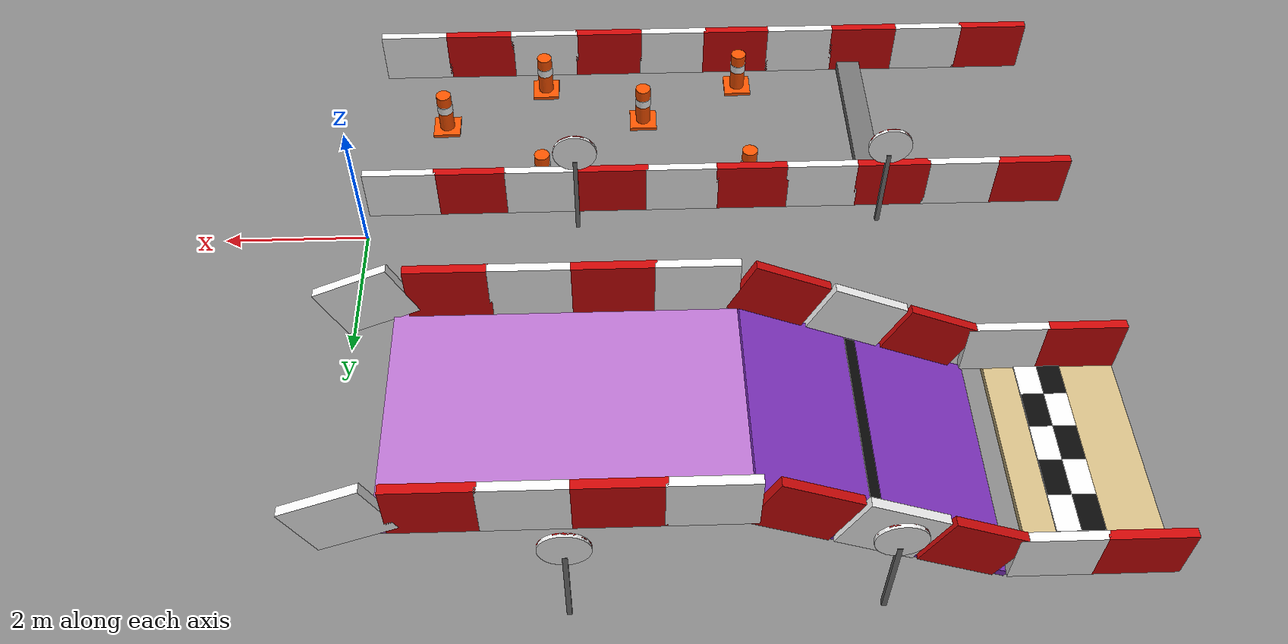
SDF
<sdf version="1.6">
 <world name="evrenos_teknofest_2026">
  <include><uri>model://sun</uri></include>
  <model name="main_course">
   <static>true</static>
   <link name="top_finish_base_0">
    <pose>-9.1500 4.0000 -0.0500 0.000000 0.000000 0.000000</pose>
    <collision name="top_finish_base_0_collision">
     <geometry><box><size>1.7000 3.0000 0.1000</size></box></geometry>
    </collision>
    <visual name="top_finish_base_0_visual">
     <geometry><box><size>1.7000 3.0000 0.1000</size></box></geometry>
     <material><ambient>0.82 0.73 0.52 1</ambient><diffuse>0.82 0.73 0.52 1</diffuse></material>
    </visual>
   </link>
   <link name="shooting_platform">
    <pose>-2.9000 4.0000 1.3172 0.000000 0.000000 0.000000</pose>
    <collision name="shooting_platform_collision">
     <geometry><box><size>4.2000 3.0000 0.1000</size></box></geometry>
    </collision>
    <visual name="shooting_platform_visual">
     <geometry><box><size>4.2000 3.0000 0.1000</size></box></geometry>
     <material><ambient>0.72 0.45 0.8 1</ambient><diffuse>0.72 0.45 0.8 1</diffuse></material>
    </visual>
   </link>
   <link name="steep_down">
    <pose>-6.5000 4.0000 0.6336 0.000000 -0.427606 0.000000</pose>
    <collision name="steep_down_collision">
     <geometry><box><size>3.2968 3.0000 0.1000</size></box></geometry>
    </collision>
    <visual name="steep_down_visual">
     <geometry><box><size>3.2968 3.0000 0.1000</size></box></geometry>
     <material><ambient>0.5 0.2 0.75 1</ambient><diffuse>0.5 0.2 0.75 1</diffuse></material>
    </visual>
   </link>
   <link name="stop_strip_down">
    <pose>-6.4500 4.0000 0.7036 0.000000 -0.427606 0.000000</pose>
    <visual name="stop_strip_down_visual">
     <geometry><box><size>0.1500 2.8500 0.0300</size></box></geometry>
     <material><ambient>0.04 0.04 0.04 1</ambient><diffuse>0.04 0.04 0.04 1</diffuse></material>
    </visual>
   </link>
   <link name="finish_0_0">
    <pose>-9.1500 2.7500 0.0110 0.000000 0.000000 0.000000</pose>
    <visual name="finish_0_0_visual">
     <geometry><box><size>0.3000 0.5000 0.0220</size></box></geometry>
     <material><ambient>0.04 0.04 0.04 1</ambient><diffuse>0.04 0.04 0.04 1</diffuse></material>
    </visual>
   </link>
   <link name="finish_1_0">
    <pose>-8.8500 2.7500 0.0110 0.000000 0.000000 0.000000</pose>
    <visual name="finish_1_0_visual">
     <geometry><box><size>0.3000 0.5000 0.0220</size></box></geometry>
     <material><ambient>0.95 0.95 0.95 1</ambient><diffuse>0.95 0.95 0.95 1</diffuse></material>
    </visual>
   </link>
   <link name="finish_0_1">
    <pose>-9.1500 3.2500 0.0110 0.000000 0.000000 0.000000</pose>
    <visual name="finish_0_1_visual">
     <geometry><box><size>0.3000 0.5000 0.0220</size></box></geometry>
     <material><ambient>0.95 0.95 0.95 1</ambient><diffuse>0.95 0.95 0.95 1</diffuse></material>
    </visual>
   </link>
   <link name="finish_1_1">
    <pose>-8.8500 3.2500 0.0110 0.000000 0.000000 0.000000</pose>
    <visual name="finish_1_1_visual">
     <geometry><box><size>0.3000 0.5000 0.0220</size></box></geometry>
     <material><ambient>0.04 0.04 0.04 1</ambient><diffuse>0.04 0.04 0.04 1</diffuse></material>
    </visual>
   </link>
   <link name="finish_0_2">
    <pose>-9.1500 3.7500 0.0110 0.000000 0.000000 0.000000</pose>
    <visual name="finish_0_2_visual">
     <geometry><box><size>0.3000 0.5000 0.0220</size></box></geometry>
     <material><ambient>0.04 0.04 0.04 1</ambient><diffuse>0.04 0.04 0.04 1</diffuse></material>
    </visual>
   </link>
   <link name="finish_1_2">
    <pose>-8.8500 3.7500 0.0110 0.000000 0.000000 0.000000</pose>
    <visual name="finish_1_2_visual">
     <geometry><box><size>0.3000 0.5000 0.0220</size></box></geometry>
     <material><ambient>0.95 0.95 0.95 1</ambient><diffuse>0.95 0.95 0.95 1</diffuse></material>
    </visual>
   </link>
   <link name="finish_0_3">
    <pose>-9.1500 4.2500 0.0110 0.000000 0.000000 0.000000</pose>
    <visual name="finish_0_3_visual">
     <geometry><box><size>0.3000 0.5000 0.0220</size></box></geometry>
     <material><ambient>0.95 0.95 0.95 1</ambient><diffuse>0.95 0.95 0.95 1</diffuse></material>
    </visual>
   </link>
   <link name="finish_1_3">
    <pose>-8.8500 4.2500 0.0110 0.000000 0.000000 0.000000</pose>
    <visual name="finish_1_3_visual">
     <geometry><box><size>0.3000 0.5000 0.0220</size></box></geometry>
     <material><ambient>0.04 0.04 0.04 1</ambient><diffuse>0.04 0.04 0.04 1</diffuse></material>
    </visual>
   </link>
   <link name="finish_0_4">
    <pose>-9.1500 4.7500 0.0110 0.000000 0.000000 0.000000</pose>
    <visual name="finish_0_4_visual">
     <geometry><box><size>0.3000 0.5000 0.0220</size></box></geometry>
     <material><ambient>0.04 0.04 0.04 1</ambient><diffuse>0.04 0.04 0.04 1</diffuse></material>
    </visual>
   </link>
   <link name="finish_1_4">
    <pose>-8.8500 4.7500 0.0110 0.000000 0.000000 0.000000</pose>
    <visual name="finish_1_4_visual">
     <geometry><box><size>0.3000 0.5000 0.0220</size></box></geometry>
     <material><ambient>0.95 0.95 0.95 1</ambient><diffuse>0.95 0.95 0.95 1</diffuse></material>
    </visual>
   </link>
   <link name="finish_0_5">
    <pose>-9.1500 5.2500 0.0110 0.000000 0.000000 0.000000</pose>
    <visual name="finish_0_5_visual">
     <geometry><box><size>0.3000 0.5000 0.0220</size></box></geometry>
     <material><ambient>0.95 0.95 0.95 1</ambient><diffuse>0.95 0.95 0.95 1</diffuse></material>
    </visual>
   </link>
   <link name="finish_1_5">
    <pose>-8.8500 5.2500 0.0110 0.000000 0.000000 0.000000</pose>
    <visual name="finish_1_5_visual">
     <geometry><box><size>0.3000 0.5000 0.0220</size></box></geometry>
     <material><ambient>0.04 0.04 0.04 1</ambient><diffuse>0.04 0.04 0.04 1</diffuse></material>
    </visual>
   </link>
   <link name="vertical_obstacle">
    <pose>-7.3000 -2.0000 0.0750 0.000000 0.000000 0.000000</pose>
    <collision name="vertical_obstacle_collision">
     <geometry><box><size>0.3500 3.0000 0.1500</size></box></geometry>
    </collision>
    <visual name="vertical_obstacle_visual">
     <geometry><box><size>0.3500 3.0000 0.1500</size></box></geometry>
     <material><ambient>0.45 0.45 0.45 1</ambient><diffuse>0.45 0.45 0.45 1</diffuse></material>
    </visual>
   </link>
   <link name="cone_base_0">
    <pose>-5.5000 -3.0625 0.0250 0.000000 0.000000 0.000000</pose>
    <collision name="cone_base_0_collision">
     <geometry><box><size>0.4000 0.4000 0.0500</size></box></geometry>
    </collision>
    <visual name="cone_base_0_visual">
     <geometry><box><size>0.4000 0.4000 0.0500</size></box></geometry>
     <material><ambient>1.0 0.32 0.0 1</ambient><diffuse>1.0 0.32 0.0 1</diffuse></material>
    </visual>
   </link>
   <link name="cone_orange_0">
    <pose>-5.5000 -3.0625 0.3600 0.000000 0.000000 0.000000</pose>
    <collision name="cone_orange_0_collision">
     <geometry><cylinder><radius>0.1100</radius><length>0.6200</length></cylinder></geometry>
    </collision>
    <visual name="cone_orange_0_visual">
     <geometry><cylinder><radius>0.1100</radius><length>0.6200</length></cylinder></geometry>
     <material><ambient>1.0 0.32 0.0 1</ambient><diffuse>1.0 0.32 0.0 1</diffuse></material>
    </visual>
   </link>
   <link name="cone_white_0">
    <pose>-5.5000 -3.0625 0.4300 0.000000 0.000000 0.000000</pose>
    <collision name="cone_white_0_collision">
     <geometry><cylinder><radius>0.1150</radius><length>0.1300</length></cylinder></geometry>
    </collision>
    <visual name="cone_white_0_visual">
     <geometry><cylinder><radius>0.1150</radius><length>0.1300</length></cylinder></geometry>
     <material><ambient>0.95 0.95 0.95 1</ambient><diffuse>0.95 0.95 0.95 1</diffuse></material>
    </visual>
   </link>
   <link name="cone_base_1">
    <pose>-5.5000 -0.9375 0.0250 0.000000 0.000000 0.000000</pose>
    <collision name="cone_base_1_collision">
     <geometry><box><size>0.4000 0.4000 0.0500</size></box></geometry>
    </collision>
    <visual name="cone_base_1_visual">
     <geometry><box><size>0.4000 0.4000 0.0500</size></box></geometry>
     <material><ambient>1.0 0.32 0.0 1</ambient><diffuse>1.0 0.32 0.0 1</diffuse></material>
    </visual>
   </link>
   <link name="cone_orange_1">
    <pose>-5.5000 -0.9375 0.3600 0.000000 0.000000 0.000000</pose>
    <collision name="cone_orange_1_collision">
     <geometry><cylinder><radius>0.1100</radius><length>0.6200</length></cylinder></geometry>
    </collision>
    <visual name="cone_orange_1_visual">
     <geometry><cylinder><radius>0.1100</radius><length>0.6200</length></cylinder></geometry>
     <material><ambient>1.0 0.32 0.0 1</ambient><diffuse>1.0 0.32 0.0 1</diffuse></material>
    </visual>
   </link>
   <link name="cone_white_1">
    <pose>-5.5000 -0.9375 0.4300 0.000000 0.000000 0.000000</pose>
    <collision name="cone_white_1_collision">
     <geometry><cylinder><radius>0.1150</radius><length>0.1300</length></cylinder></geometry>
    </collision>
    <visual name="cone_white_1_visual">
     <geometry><cylinder><radius>0.1150</radius><length>0.1300</length></cylinder></geometry>
     <material><ambient>0.95 0.95 0.95 1</ambient><diffuse>0.95 0.95 0.95 1</diffuse></material>
    </visual>
   </link>
   <link name="cone_base_2">
    <pose>-4.0000 -2.3125 0.0250 0.000000 0.000000 0.000000</pose>
    <collision name="cone_base_2_collision">
     <geometry><box><size>0.4000 0.4000 0.0500</size></box></geometry>
    </collision>
    <visual name="cone_base_2_visual">
     <geometry><box><size>0.4000 0.4000 0.0500</size></box></geometry>
     <material><ambient>1.0 0.32 0.0 1</ambient><diffuse>1.0 0.32 0.0 1</diffuse></material>
    </visual>
   </link>
   <link name="cone_orange_2">
    <pose>-4.0000 -2.3125 0.3600 0.000000 0.000000 0.000000</pose>
    <collision name="cone_orange_2_collision">
     <geometry><cylinder><radius>0.1100</radius><length>0.6200</length></cylinder></geometry>
    </collision>
    <visual name="cone_orange_2_visual">
     <geometry><cylinder><radius>0.1100</radius><length>0.6200</length></cylinder></geometry>
     <material><ambient>1.0 0.32 0.0 1</ambient><diffuse>1.0 0.32 0.0 1</diffuse></material>
    </visual>
   </link>
   <link name="cone_white_2">
    <pose>-4.0000 -2.3125 0.4300 0.000000 0.000000 0.000000</pose>
    <collision name="cone_white_2_collision">
     <geometry><cylinder><radius>0.1150</radius><length>0.1300</length></cylinder></geometry>
    </collision>
    <visual name="cone_white_2_visual">
     <geometry><cylinder><radius>0.1150</radius><length>0.1300</length></cylinder></geometry>
     <material><ambient>0.95 0.95 0.95 1</ambient><diffuse>0.95 0.95 0.95 1</diffuse></material>
    </visual>
   </link>
   <link name="cone_base_3">
    <pose>-2.5000 -3.0625 0.0250 0.000000 0.000000 0.000000</pose>
    <collision name="cone_base_3_collision">
     <geometry><box><size>0.4000 0.4000 0.0500</size></box></geometry>
    </collision>
    <visual name="cone_base_3_visual">
     <geometry><box><size>0.4000 0.4000 0.0500</size></box></geometry>
     <material><ambient>1.0 0.32 0.0 1</ambient><diffuse>1.0 0.32 0.0 1</diffuse></material>
    </visual>
   </link>
   <link name="cone_orange_3">
    <pose>-2.5000 -3.0625 0.3600 0.000000 0.000000 0.000000</pose>
    <collision name="cone_orange_3_collision">
     <geometry><cylinder><radius>0.1100</radius><length>0.6200</length></cylinder></geometry>
    </collision>
    <visual name="cone_orange_3_visual">
     <geometry><cylinder><radius>0.1100</radius><length>0.6200</length></cylinder></geometry>
     <material><ambient>1.0 0.32 0.0 1</ambient><diffuse>1.0 0.32 0.0 1</diffuse></material>
    </visual>
   </link>
   <link name="cone_white_3">
    <pose>-2.5000 -3.0625 0.4300 0.000000 0.000000 0.000000</pose>
    <collision name="cone_white_3_collision">
     <geometry><cylinder><radius>0.1150</radius><length>0.1300</length></cylinder></geometry>
    </collision>
    <visual name="cone_white_3_visual">
     <geometry><cylinder><radius>0.1150</radius><length>0.1300</length></cylinder></geometry>
     <material><ambient>0.95 0.95 0.95 1</ambient><diffuse>0.95 0.95 0.95 1</diffuse></material>
    </visual>
   </link>
   <link name="cone_base_4">
    <pose>-2.5000 -0.9375 0.0250 0.000000 0.000000 0.000000</pose>
    <collision name="cone_base_4_collision">
     <geometry><box><size>0.4000 0.4000 0.0500</size></box></geometry>
    </collision>
    <visual name="cone_base_4_visual">
     <geometry><box><size>0.4000 0.4000 0.0500</size></box></geometry>
     <material><ambient>1.0 0.32 0.0 1</ambient><diffuse>1.0 0.32 0.0 1</diffuse></material>
    </visual>
   </link>
   <link name="cone_orange_4">
    <pose>-2.5000 -0.9375 0.3600 0.000000 0.000000 0.000000</pose>
    <collision name="cone_orange_4_collision">
     <geometry><cylinder><radius>0.1100</radius><length>0.6200</length></cylinder></geometry>
    </collision>
    <visual name="cone_orange_4_visual">
     <geometry><cylinder><radius>0.1100</radius><length>0.6200</length></cylinder></geometry>
     <material><ambient>1.0 0.32 0.0 1</ambient><diffuse>1.0 0.32 0.0 1</diffuse></material>
    </visual>
   </link>
   <link name="cone_white_4">
    <pose>-2.5000 -0.9375 0.4300 0.000000 0.000000 0.000000</pose>
    <collision name="cone_white_4_collision">
     <geometry><cylinder><radius>0.1150</radius><length>0.1300</length></cylinder></geometry>
    </collision>
    <visual name="cone_white_4_visual">
     <geometry><cylinder><radius>0.1150</radius><length>0.1300</length></cylinder></geometry>
     <material><ambient>0.95 0.95 0.95 1</ambient><diffuse>0.95 0.95 0.95 1</diffuse></material>
    </visual>
   </link>
   <link name="cone_base_5">
    <pose>-1.0000 -2.2500 0.0250 0.000000 0.000000 0.000000</pose>
    <collision name="cone_base_5_collision">
     <geometry><box><size>0.4000 0.4000 0.0500</size></box></geometry>
    </collision>
    <visual name="cone_base_5_visual">
     <geometry><box><size>0.4000 0.4000 0.0500</size></box></geometry>
     <material><ambient>1.0 0.32 0.0 1</ambient><diffuse>1.0 0.32 0.0 1</diffuse></material>
    </visual>
   </link>
   <link name="cone_orange_5">
    <pose>-1.0000 -2.2500 0.3600 0.000000 0.000000 0.000000</pose>
    <collision name="cone_orange_5_collision">
     <geometry><cylinder><radius>0.1100</radius><length>0.6200</length></cylinder></geometry>
    </collision>
    <visual name="cone_orange_5_visual">
     <geometry><cylinder><radius>0.1100</radius><length>0.6200</length></cylinder></geometry>
     <material><ambient>1.0 0.32 0.0 1</ambient><diffuse>1.0 0.32 0.0 1</diffuse></material>
    </visual>
   </link>
   <link name="cone_white_5">
    <pose>-1.0000 -2.2500 0.4300 0.000000 0.000000 0.000000</pose>
    <collision name="cone_white_5_collision">
     <geometry><cylinder><radius>0.1150</radius><length>0.1300</length></cylinder></geometry>
    </collision>
    <visual name="cone_white_5_visual">
     <geometry><cylinder><radius>0.1150</radius><length>0.1300</length></cylinder></geometry>
     <material><ambient>0.95 0.95 0.95 1</ambient><diffuse>0.95 0.95 0.95 1</diffuse></material>
    </visual>
   </link>
   <link name="middle_bar_-1_0">
    <pose>-9.5000 -3.5000 0.4000 0.000000 0.000000 0.000000</pose>
    <collision name="middle_bar_-1_0_collision">
     <geometry><box><size>1.0300 0.1200 0.8000</size></box></geometry>
    </collision>
    <visual name="middle_bar_-1_0_visual">
     <geometry><box><size>1.0300 0.1200 0.8000</size></box></geometry>
     <material><ambient>0.8 0.03 0.03 1</ambient><diffuse>0.8 0.03 0.03 1</diffuse></material>
    </visual>
   </link>
   <link name="middle_bar_-1_1">
    <pose>-8.5000 -3.5000 0.4000 0.000000 0.000000 0.000000</pose>
    <collision name="middle_bar_-1_1_collision">
     <geometry><box><size>1.0300 0.1200 0.8000</size></box></geometry>
    </collision>
    <visual name="middle_bar_-1_1_visual">
     <geometry><box><size>1.0300 0.1200 0.8000</size></box></geometry>
     <material><ambient>0.95 0.95 0.95 1</ambient><diffuse>0.95 0.95 0.95 1</diffuse></material>
    </visual>
   </link>
   <link name="middle_bar_-1_2">
    <pose>-7.5000 -3.5000 0.4000 0.000000 0.000000 0.000000</pose>
    <collision name="middle_bar_-1_2_collision">
     <geometry><box><size>1.0300 0.1200 0.8000</size></box></geometry>
    </collision>
    <visual name="middle_bar_-1_2_visual">
     <geometry><box><size>1.0300 0.1200 0.8000</size></box></geometry>
     <material><ambient>0.8 0.03 0.03 1</ambient><diffuse>0.8 0.03 0.03 1</diffuse></material>
    </visual>
   </link>
   <link name="middle_bar_-1_3">
    <pose>-6.5000 -3.5000 0.4000 0.000000 0.000000 0.000000</pose>
    <collision name="middle_bar_-1_3_collision">
     <geometry><box><size>1.0300 0.1200 0.8000</size></box></geometry>
    </collision>
    <visual name="middle_bar_-1_3_visual">
     <geometry><box><size>1.0300 0.1200 0.8000</size></box></geometry>
     <material><ambient>0.95 0.95 0.95 1</ambient><diffuse>0.95 0.95 0.95 1</diffuse></material>
    </visual>
   </link>
   <link name="middle_bar_-1_4">
    <pose>-5.5000 -3.5000 0.4000 0.000000 0.000000 0.000000</pose>
    <collision name="middle_bar_-1_4_collision">
     <geometry><box><size>1.0300 0.1200 0.8000</size></box></geometry>
    </collision>
    <visual name="middle_bar_-1_4_visual">
     <geometry><box><size>1.0300 0.1200 0.8000</size></box></geometry>
     <material><ambient>0.8 0.03 0.03 1</ambient><diffuse>0.8 0.03 0.03 1</diffuse></material>
    </visual>
   </link>
   <link name="middle_bar_-1_5">
    <pose>-4.5000 -3.5000 0.4000 0.000000 0.000000 0.000000</pose>
    <collision name="middle_bar_-1_5_collision">
     <geometry><box><size>1.0300 0.1200 0.8000</size></box></geometry>
    </collision>
    <visual name="middle_bar_-1_5_visual">
     <geometry><box><size>1.0300 0.1200 0.8000</size></box></geometry>
     <material><ambient>0.95 0.95 0.95 1</ambient><diffuse>0.95 0.95 0.95 1</diffuse></material>
    </visual>
   </link>
   <link name="middle_bar_-1_6">
    <pose>-3.5000 -3.5000 0.4000 0.000000 0.000000 0.000000</pose>
    <collision name="middle_bar_-1_6_collision">
     <geometry><box><size>1.0300 0.1200 0.8000</size></box></geometry>
    </collision>
    <visual name="middle_bar_-1_6_visual">
     <geometry><box><size>1.0300 0.1200 0.8000</size></box></geometry>
     <material><ambient>0.8 0.03 0.03 1</ambient><diffuse>0.8 0.03 0.03 1</diffuse></material>
    </visual>
   </link>
   <link name="middle_bar_-1_7">
    <pose>-2.5000 -3.5000 0.4000 0.000000 0.000000 0.000000</pose>
    <collision name="middle_bar_-1_7_collision">
     <geometry><box><size>1.0300 0.1200 0.8000</size></box></geometry>
    </collision>
    <visual name="middle_bar_-1_7_visual">
     <geometry><box><size>1.0300 0.1200 0.8000</size></box></geometry>
     <material><ambient>0.95 0.95 0.95 1</ambient><diffuse>0.95 0.95 0.95 1</diffuse></material>
    </visual>
   </link>
   <link name="middle_bar_-1_8">
    <pose>-1.5000 -3.5000 0.4000 0.000000 0.000000 0.000000</pose>
    <collision name="middle_bar_-1_8_collision">
     <geometry><box><size>1.0300 0.1200 0.8000</size></box></geometry>
    </collision>
    <visual name="middle_bar_-1_8_visual">
     <geometry><box><size>1.0300 0.1200 0.8000</size></box></geometry>
     <material><ambient>0.8 0.03 0.03 1</ambient><diffuse>0.8 0.03 0.03 1</diffuse></material>
    </visual>
   </link>
   <link name="middle_bar_-1_9">
    <pose>-0.5000 -3.5000 0.4000 0.000000 0.000000 0.000000</pose>
    <collision name="middle_bar_-1_9_collision">
     <geometry><box><size>1.0300 0.1200 0.8000</size></box></geometry>
    </collision>
    <visual name="middle_bar_-1_9_visual">
     <geometry><box><size>1.0300 0.1200 0.8000</size></box></geometry>
     <material><ambient>0.95 0.95 0.95 1</ambient><diffuse>0.95 0.95 0.95 1</diffuse></material>
    </visual>
   </link>
   <link name="middle_bar_1_0">
    <pose>-9.5000 -0.5000 0.4000 0.000000 0.000000 0.000000</pose>
    <collision name="middle_bar_1_0_collision">
     <geometry><box><size>1.0300 0.1200 0.8000</size></box></geometry>
    </collision>
    <visual name="middle_bar_1_0_visual">
     <geometry><box><size>1.0300 0.1200 0.8000</size></box></geometry>
     <material><ambient>0.8 0.03 0.03 1</ambient><diffuse>0.8 0.03 0.03 1</diffuse></material>
    </visual>
   </link>
   <link name="middle_bar_1_1">
    <pose>-8.5000 -0.5000 0.4000 0.000000 0.000000 0.000000</pose>
    <collision name="middle_bar_1_1_collision">
     <geometry><box><size>1.0300 0.1200 0.8000</size></box></geometry>
    </collision>
    <visual name="middle_bar_1_1_visual">
     <geometry><box><size>1.0300 0.1200 0.8000</size></box></geometry>
     <material><ambient>0.95 0.95 0.95 1</ambient><diffuse>0.95 0.95 0.95 1</diffuse></material>
    </visual>
   </link>
   <link name="middle_bar_1_2">
    <pose>-7.5000 -0.5000 0.4000 0.000000 0.000000 0.000000</pose>
    <collision name="middle_bar_1_2_collision">
     <geometry><box><size>1.0300 0.1200 0.8000</size></box></geometry>
    </collision>
    <visual name="middle_bar_1_2_visual">
     <geometry><box><size>1.0300 0.1200 0.8000</size></box></geometry>
     <material><ambient>0.8 0.03 0.03 1</ambient><diffuse>0.8 0.03 0.03 1</diffuse></material>
    </visual>
   </link>
   <link name="middle_bar_1_3">
    <pose>-6.5000 -0.5000 0.4000 0.000000 0.000000 0.000000</pose>
    <collision name="middle_bar_1_3_collision">
     <geometry><box><size>1.0300 0.1200 0.8000</size></box></geometry>
    </collision>
    <visual name="middle_bar_1_3_visual">
     <geometry><box><size>1.0300 0.1200 0.8000</size></box></geometry>
     <material><ambient>0.95 0.95 0.95 1</ambient><diffuse>0.95 0.95 0.95 1</diffuse></material>
    </visual>
   </link>
   <link name="middle_bar_1_4">
    <pose>-5.5000 -0.5000 0.4000 0.000000 0.000000 0.000000</pose>
    <collision name="middle_bar_1_4_collision">
     <geometry><box><size>1.0300 0.1200 0.8000</size></box></geometry>
    </collision>
    <visual name="middle_bar_1_4_visual">
     <geometry><box><size>1.0300 0.1200 0.8000</size></box></geometry>
     <material><ambient>0.8 0.03 0.03 1</ambient><diffuse>0.8 0.03 0.03 1</diffuse></material>
    </visual>
   </link>
   <link name="middle_bar_1_5">
    <pose>-4.5000 -0.5000 0.4000 0.000000 0.000000 0.000000</pose>
    <collision name="middle_bar_1_5_collision">
     <geometry><box><size>1.0300 0.1200 0.8000</size></box></geometry>
    </collision>
    <visual name="middle_bar_1_5_visual">
     <geometry><box><size>1.0300 0.1200 0.8000</size></box></geometry>
     <material><ambient>0.95 0.95 0.95 1</ambient><diffuse>0.95 0.95 0.95 1</diffuse></material>
    </visual>
   </link>
   <link name="middle_bar_1_6">
    <pose>-3.5000 -0.5000 0.4000 0.000000 0.000000 0.000000</pose>
    <collision name="middle_bar_1_6_collision">
     <geometry><box><size>1.0300 0.1200 0.8000</size></box></geometry>
    </collision>
    <visual name="middle_bar_1_6_visual">
     <geometry><box><size>1.0300 0.1200 0.8000</size></box></geometry>
     <material><ambient>0.8 0.03 0.03 1</ambient><diffuse>0.8 0.03 0.03 1</diffuse></material>
    </visual>
   </link>
   <link name="middle_bar_1_7">
    <pose>-2.5000 -0.5000 0.4000 0.000000 0.000000 0.000000</pose>
    <collision name="middle_bar_1_7_collision">
     <geometry><box><size>1.0300 0.1200 0.8000</size></box></geometry>
    </collision>
    <visual name="middle_bar_1_7_visual">
     <geometry><box><size>1.0300 0.1200 0.8000</size></box></geometry>
     <material><ambient>0.95 0.95 0.95 1</ambient><diffuse>0.95 0.95 0.95 1</diffuse></material>
    </visual>
   </link>
   <link name="middle_bar_1_8">
    <pose>-1.5000 -0.5000 0.4000 0.000000 0.000000 0.000000</pose>
    <collision name="middle_bar_1_8_collision">
     <geometry><box><size>1.0300 0.1200 0.8000</size></box></geometry>
    </collision>
    <visual name="middle_bar_1_8_visual">
     <geometry><box><size>1.0300 0.1200 0.8000</size></box></geometry>
     <material><ambient>0.8 0.03 0.03 1</ambient><diffuse>0.8 0.03 0.03 1</diffuse></material>
    </visual>
   </link>
   <link name="middle_bar_1_9">
    <pose>-0.5000 -0.5000 0.4000 0.000000 0.000000 0.000000</pose>
    <collision name="middle_bar_1_9_collision">
     <geometry><box><size>1.0300 0.1200 0.8000</size></box></geometry>
    </collision>
    <visual name="middle_bar_1_9_visual">
     <geometry><box><size>1.0300 0.1200 0.8000</size></box></geometry>
     <material><ambient>0.95 0.95 0.95 1</ambient><diffuse>0.95 0.95 0.95 1</diffuse></material>
    </visual>
   </link>
   <link name="top_bar_-1_0">
    <pose>-9.5000 2.5000 0.4000 0.000000 0.000000 0.000000</pose>
    <collision name="top_bar_-1_0_collision">
     <geometry><box><size>1.0300 0.1200 0.8000</size></box></geometry>
    </collision>
    <visual name="top_bar_-1_0_visual">
     <geometry><box><size>1.0300 0.1200 0.8000</size></box></geometry>
     <material><ambient>0.8 0.03 0.03 1</ambient><diffuse>0.8 0.03 0.03 1</diffuse></material>
    </visual>
   </link>
   <link name="top_bar_-1_1">
    <pose>-8.5000 2.5000 0.4000 0.000000 0.000000 0.000000</pose>
    <collision name="top_bar_-1_1_collision">
     <geometry><box><size>1.0300 0.1200 0.8000</size></box></geometry>
    </collision>
    <visual name="top_bar_-1_1_visual">
     <geometry><box><size>1.0300 0.1200 0.8000</size></box></geometry>
     <material><ambient>0.95 0.95 0.95 1</ambient><diffuse>0.95 0.95 0.95 1</diffuse></material>
    </visual>
   </link>
   <link name="top_bar_-1_2">
    <pose>-7.5000 2.5000 0.6279 0.000000 -0.427606 0.000000</pose>
    <collision name="top_bar_-1_2_collision">
     <geometry><box><size>1.0300 0.1200 0.8000</size></box></geometry>
    </collision>
    <visual name="top_bar_-1_2_visual">
     <geometry><box><size>1.0300 0.1200 0.8000</size></box></geometry>
     <material><ambient>0.8 0.03 0.03 1</ambient><diffuse>0.8 0.03 0.03 1</diffuse></material>
    </visual>
   </link>
   <link name="top_bar_-1_3">
    <pose>-6.5000 2.5000 1.0836 0.000000 -0.427606 0.000000</pose>
    <collision name="top_bar_-1_3_collision">
     <geometry><box><size>1.0300 0.1200 0.8000</size></box></geometry>
    </collision>
    <visual name="top_bar_-1_3_visual">
     <geometry><box><size>1.0300 0.1200 0.8000</size></box></geometry>
     <material><ambient>0.95 0.95 0.95 1</ambient><diffuse>0.95 0.95 0.95 1</diffuse></material>
    </visual>
   </link>
   <link name="top_bar_-1_4">
    <pose>-5.5000 2.5000 1.5393 0.000000 -0.427606 0.000000</pose>
    <collision name="top_bar_-1_4_collision">
     <geometry><box><size>1.0300 0.1200 0.8000</size></box></geometry>
    </collision>
    <visual name="top_bar_-1_4_visual">
     <geometry><box><size>1.0300 0.1200 0.8000</size></box></geometry>
     <material><ambient>0.8 0.03 0.03 1</ambient><diffuse>0.8 0.03 0.03 1</diffuse></material>
    </visual>
   </link>
   <link name="top_bar_-1_5">
    <pose>-4.5000 2.5000 1.7672 0.000000 0.000000 0.000000</pose>
    <collision name="top_bar_-1_5_collision">
     <geometry><box><size>1.0300 0.1200 0.8000</size></box></geometry>
    </collision>
    <visual name="top_bar_-1_5_visual">
     <geometry><box><size>1.0300 0.1200 0.8000</size></box></geometry>
     <material><ambient>0.95 0.95 0.95 1</ambient><diffuse>0.95 0.95 0.95 1</diffuse></material>
    </visual>
   </link>
   <link name="top_bar_-1_6">
    <pose>-3.5000 2.5000 1.7672 0.000000 0.000000 0.000000</pose>
    <collision name="top_bar_-1_6_collision">
     <geometry><box><size>1.0300 0.1200 0.8000</size></box></geometry>
    </collision>
    <visual name="top_bar_-1_6_visual">
     <geometry><box><size>1.0300 0.1200 0.8000</size></box></geometry>
     <material><ambient>0.8 0.03 0.03 1</ambient><diffuse>0.8 0.03 0.03 1</diffuse></material>
    </visual>
   </link>
   <link name="top_bar_-1_7">
    <pose>-2.5000 2.5000 1.7672 0.000000 0.000000 0.000000</pose>
    <collision name="top_bar_-1_7_collision">
     <geometry><box><size>1.0300 0.1200 0.8000</size></box></geometry>
    </collision>
    <visual name="top_bar_-1_7_visual">
     <geometry><box><size>1.0300 0.1200 0.8000</size></box></geometry>
     <material><ambient>0.95 0.95 0.95 1</ambient><diffuse>0.95 0.95 0.95 1</diffuse></material>
    </visual>
   </link>
   <link name="top_bar_-1_8">
    <pose>-1.5000 2.5000 1.7672 0.000000 0.000000 0.000000</pose>
    <collision name="top_bar_-1_8_collision">
     <geometry><box><size>1.0300 0.1200 0.8000</size></box></geometry>
    </collision>
    <visual name="top_bar_-1_8_visual">
     <geometry><box><size>1.0300 0.1200 0.8000</size></box></geometry>
     <material><ambient>0.8 0.03 0.03 1</ambient><diffuse>0.8 0.03 0.03 1</diffuse></material>
    </visual>
   </link>
   <link name="top_bar_-1_9">
    <pose>-0.5000 2.5000 1.6305 0.000000 0.427606 0.000000</pose>
    <collision name="top_bar_-1_9_collision">
     <geometry><box><size>1.0300 0.1200 0.8000</size></box></geometry>
    </collision>
    <visual name="top_bar_-1_9_visual">
     <geometry><box><size>1.0300 0.1200 0.8000</size></box></geometry>
     <material><ambient>0.95 0.95 0.95 1</ambient><diffuse>0.95 0.95 0.95 1</diffuse></material>
    </visual>
   </link>
   <link name="top_bar_1_0">
    <pose>-9.5000 5.5000 0.4000 0.000000 0.000000 0.000000</pose>
    <collision name="top_bar_1_0_collision">
     <geometry><box><size>1.0300 0.1200 0.8000</size></box></geometry>
    </collision>
    <visual name="top_bar_1_0_visual">
     <geometry><box><size>1.0300 0.1200 0.8000</size></box></geometry>
     <material><ambient>0.8 0.03 0.03 1</ambient><diffuse>0.8 0.03 0.03 1</diffuse></material>
    </visual>
   </link>
   <link name="top_bar_1_1">
    <pose>-8.5000 5.5000 0.4000 0.000000 0.000000 0.000000</pose>
    <collision name="top_bar_1_1_collision">
     <geometry><box><size>1.0300 0.1200 0.8000</size></box></geometry>
    </collision>
    <visual name="top_bar_1_1_visual">
     <geometry><box><size>1.0300 0.1200 0.8000</size></box></geometry>
     <material><ambient>0.95 0.95 0.95 1</ambient><diffuse>0.95 0.95 0.95 1</diffuse></material>
    </visual>
   </link>
   <link name="top_bar_1_2">
    <pose>-7.5000 5.5000 0.6279 0.000000 -0.427606 0.000000</pose>
    <collision name="top_bar_1_2_collision">
     <geometry><box><size>1.0300 0.1200 0.8000</size></box></geometry>
    </collision>
    <visual name="top_bar_1_2_visual">
     <geometry><box><size>1.0300 0.1200 0.8000</size></box></geometry>
     <material><ambient>0.8 0.03 0.03 1</ambient><diffuse>0.8 0.03 0.03 1</diffuse></material>
    </visual>
   </link>
   <link name="top_bar_1_3">
    <pose>-6.5000 5.5000 1.0836 0.000000 -0.427606 0.000000</pose>
    <collision name="top_bar_1_3_collision">
     <geometry><box><size>1.0300 0.1200 0.8000</size></box></geometry>
    </collision>
    <visual name="top_bar_1_3_visual">
     <geometry><box><size>1.0300 0.1200 0.8000</size></box></geometry>
     <material><ambient>0.95 0.95 0.95 1</ambient><diffuse>0.95 0.95 0.95 1</diffuse></material>
    </visual>
   </link>
   <link name="top_bar_1_4">
    <pose>-5.5000 5.5000 1.5393 0.000000 -0.427606 0.000000</pose>
    <collision name="top_bar_1_4_collision">
     <geometry><box><size>1.0300 0.1200 0.8000</size></box></geometry>
    </collision>
    <visual name="top_bar_1_4_visual">
     <geometry><box><size>1.0300 0.1200 0.8000</size></box></geometry>
     <material><ambient>0.8 0.03 0.03 1</ambient><diffuse>0.8 0.03 0.03 1</diffuse></material>
    </visual>
   </link>
   <link name="top_bar_1_5">
    <pose>-4.5000 5.5000 1.7672 0.000000 0.000000 0.000000</pose>
    <collision name="top_bar_1_5_collision">
     <geometry><box><size>1.0300 0.1200 0.8000</size></box></geometry>
    </collision>
    <visual name="top_bar_1_5_visual">
     <geometry><box><size>1.0300 0.1200 0.8000</size></box></geometry>
     <material><ambient>0.95 0.95 0.95 1</ambient><diffuse>0.95 0.95 0.95 1</diffuse></material>
    </visual>
   </link>
   <link name="top_bar_1_6">
    <pose>-3.5000 5.5000 1.7672 0.000000 0.000000 0.000000</pose>
    <collision name="top_bar_1_6_collision">
     <geometry><box><size>1.0300 0.1200 0.8000</size></box></geometry>
    </collision>
    <visual name="top_bar_1_6_visual">
     <geometry><box><size>1.0300 0.1200 0.8000</size></box></geometry>
     <material><ambient>0.8 0.03 0.03 1</ambient><diffuse>0.8 0.03 0.03 1</diffuse></material>
    </visual>
   </link>
   <link name="top_bar_1_7">
    <pose>-2.5000 5.5000 1.7672 0.000000 0.000000 0.000000</pose>
    <collision name="top_bar_1_7_collision">
     <geometry><box><size>1.0300 0.1200 0.8000</size></box></geometry>
    </collision>
    <visual name="top_bar_1_7_visual">
     <geometry><box><size>1.0300 0.1200 0.8000</size></box></geometry>
     <material><ambient>0.95 0.95 0.95 1</ambient><diffuse>0.95 0.95 0.95 1</diffuse></material>
    </visual>
   </link>
   <link name="top_bar_1_8">
    <pose>-1.5000 5.5000 1.7672 0.000000 0.000000 0.000000</pose>
    <collision name="top_bar_1_8_collision">
     <geometry><box><size>1.0300 0.1200 0.8000</size></box></geometry>
    </collision>
    <visual name="top_bar_1_8_visual">
     <geometry><box><size>1.0300 0.1200 0.8000</size></box></geometry>
     <material><ambient>0.8 0.03 0.03 1</ambient><diffuse>0.8 0.03 0.03 1</diffuse></material>
    </visual>
   </link>
   <link name="top_bar_1_9">
    <pose>-0.5000 5.5000 1.6305 0.000000 0.427606 0.000000</pose>
    <collision name="top_bar_1_9_collision">
     <geometry><box><size>1.0300 0.1200 0.8000</size></box></geometry>
    </collision>
    <visual name="top_bar_1_9_visual">
     <geometry><box><size>1.0300 0.1200 0.8000</size></box></geometry>
     <material><ambient>0.95 0.95 0.95 1</ambient><diffuse>0.95 0.95 0.95 1</diffuse></material>
    </visual>
   </link>
   <link name="stage4_post">
    <pose>-7.3000 -0.1500 0.6500 0.000000 0.000000 0.000000</pose>
    <collision name="stage4_post_collision">
     <geometry><box><size>0.0600 0.0600 1.3000</size></box></geometry>
    </collision>
    <visual name="stage4_post_visual">
     <geometry><box><size>0.0600 0.0600 1.3000</size></box></geometry>
     <material><ambient>0.45 0.45 0.45 1</ambient><diffuse>0.45 0.45 0.45 1</diffuse></material>
    </visual>
   </link>
   <link name="stage4_disc">
    <pose>-7.3000 -0.1500 1.4500 1.570796 0.000000 0.000000</pose>
    <visual name="stage4_disc_visual">
     <geometry><cylinder><radius>0.3000</radius><length>0.0500</length></cylinder></geometry>
     <material><ambient>0.95 0.95 0.95 1</ambient><diffuse>0.95 0.95 0.95 1</diffuse></material>
    </visual>
   </link>
   <link name="stage4_redring">
    <pose>-7.3000 -0.1620 1.4500 1.570796 0.000000 0.000000</pose>
    <visual name="stage4_redring_visual">
     <geometry><cylinder><radius>0.3000</radius><length>0.0180</length></cylinder></geometry>
     <material><ambient>0.8 0.03 0.03 1</ambient><diffuse>0.8 0.03 0.03 1</diffuse></material>
    </visual>
   </link>
   <link name="stage4_inner">
    <pose>-7.3000 -0.1740 1.4500 1.570796 0.000000 0.000000</pose>
    <visual name="stage4_inner_visual">
     <geometry><cylinder><radius>0.2400</radius><length>0.0200</length></cylinder></geometry>
     <material><ambient>0.95 0.95 0.95 1</ambient><diffuse>0.95 0.95 0.95 1</diffuse></material>
    </visual>
   </link>
   <link name="stage5_post">
    <pose>-3.0000 -0.1500 0.6500 0.000000 0.000000 0.000000</pose>
    <collision name="stage5_post_collision">
     <geometry><box><size>0.0600 0.0600 1.3000</size></box></geometry>
    </collision>
    <visual name="stage5_post_visual">
     <geometry><box><size>0.0600 0.0600 1.3000</size></box></geometry>
     <material><ambient>0.45 0.45 0.45 1</ambient><diffuse>0.45 0.45 0.45 1</diffuse></material>
    </visual>
   </link>
   <link name="stage5_disc">
    <pose>-3.0000 -0.1500 1.4500 1.570796 0.000000 0.000000</pose>
    <visual name="stage5_disc_visual">
     <geometry><cylinder><radius>0.3000</radius><length>0.0500</length></cylinder></geometry>
     <material><ambient>0.95 0.95 0.95 1</ambient><diffuse>0.95 0.95 0.95 1</diffuse></material>
    </visual>
   </link>
   <link name="stage5_redring">
    <pose>-3.0000 -0.1620 1.4500 1.570796 0.000000 0.000000</pose>
    <visual name="stage5_redring_visual">
     <geometry><cylinder><radius>0.3000</radius><length>0.0180</length></cylinder></geometry>
     <material><ambient>0.8 0.03 0.03 1</ambient><diffuse>0.8 0.03 0.03 1</diffuse></material>
    </visual>
   </link>
   <link name="stage5_inner">
    <pose>-3.0000 -0.1740 1.4500 1.570796 0.000000 0.000000</pose>
    <visual name="stage5_inner_visual">
     <geometry><cylinder><radius>0.2400</radius><length>0.0200</length></cylinder></geometry>
     <material><ambient>0.95 0.95 0.95 1</ambient><diffuse>0.95 0.95 0.95 1</diffuse></material>
    </visual>
   </link>
   <link name="stage9_post">
    <pose>-2.9000 5.8500 0.6500 0.000000 0.000000 0.000000</pose>
    <collision name="stage9_post_collision">
     <geometry><box><size>0.0600 0.0600 1.3000</size></box></geometry>
    </collision>
    <visual name="stage9_post_visual">
     <geometry><box><size>0.0600 0.0600 1.3000</size></box></geometry>
     <material><ambient>0.45 0.45 0.45 1</ambient><diffuse>0.45 0.45 0.45 1</diffuse></material>
    </visual>
   </link>
   <link name="stage9_disc">
    <pose>-2.9000 5.8500 1.4500 1.570796 0.000000 0.000000</pose>
    <visual name="stage9_disc_visual">
     <geometry><cylinder><radius>0.3000</radius><length>0.0500</length></cylinder></geometry>
     <material><ambient>0.95 0.95 0.95 1</ambient><diffuse>0.95 0.95 0.95 1</diffuse></material>
    </visual>
   </link>
   <link name="stage9_redring">
    <pose>-2.9000 5.8380 1.4500 1.570796 0.000000 0.000000</pose>
    <visual name="stage9_redring_visual">
     <geometry><cylinder><radius>0.3000</radius><length>0.0180</length></cylinder></geometry>
     <material><ambient>0.8 0.03 0.03 1</ambient><diffuse>0.8 0.03 0.03 1</diffuse></material>
    </visual>
   </link>
   <link name="stage9_inner">
    <pose>-2.9000 5.8260 1.4500 1.570796 0.000000 0.000000</pose>
    <visual name="stage9_inner_visual">
     <geometry><cylinder><radius>0.2400</radius><length>0.0200</length></cylinder></geometry>
     <material><ambient>0.95 0.95 0.95 1</ambient><diffuse>0.95 0.95 0.95 1</diffuse></material>
    </visual>
   </link>
   <link name="stage10_post">
    <pose>-6.5000 5.8500 0.6500 0.000000 0.000000 0.000000</pose>
    <collision name="stage10_post_collision">
     <geometry><box><size>0.0600 0.0600 1.3000</size></box></geometry>
    </collision>
    <visual name="stage10_post_visual">
     <geometry><box><size>0.0600 0.0600 1.3000</size></box></geometry>
     <material><ambient>0.45 0.45 0.45 1</ambient><diffuse>0.45 0.45 0.45 1</diffuse></material>
    </visual>
   </link>
   <link name="stage10_disc">
    <pose>-6.5000 5.8500 1.4500 1.570796 0.000000 0.000000</pose>
    <visual name="stage10_disc_visual">
     <geometry><cylinder><radius>0.3000</radius><length>0.0500</length></cylinder></geometry>
     <material><ambient>0.95 0.95 0.95 1</ambient><diffuse>0.95 0.95 0.95 1</diffuse></material>
    </visual>
   </link>
   <link name="stage10_redring">
    <pose>-6.5000 5.8380 1.4500 1.570796 0.000000 0.000000</pose>
    <visual name="stage10_redring_visual">
     <geometry><cylinder><radius>0.3000</radius><length>0.0180</length></cylinder></geometry>
     <material><ambient>0.8 0.03 0.03 1</ambient><diffuse>0.8 0.03 0.03 1</diffuse></material>
    </visual>
   </link>
   <link name="stage10_inner">
    <pose>-6.5000 5.8260 1.4500 1.570796 0.000000 0.000000</pose>
    <visual name="stage10_inner_visual">
     <geometry><cylinder><radius>0.2400</radius><length>0.0200</length></cylinder></geometry>
     <material><ambient>0.95 0.95 0.95 1</ambient><diffuse>0.95 0.95 0.95 1</diffuse></material>
    </visual>
   </link>
  </model>
 </world>
</sdf>
